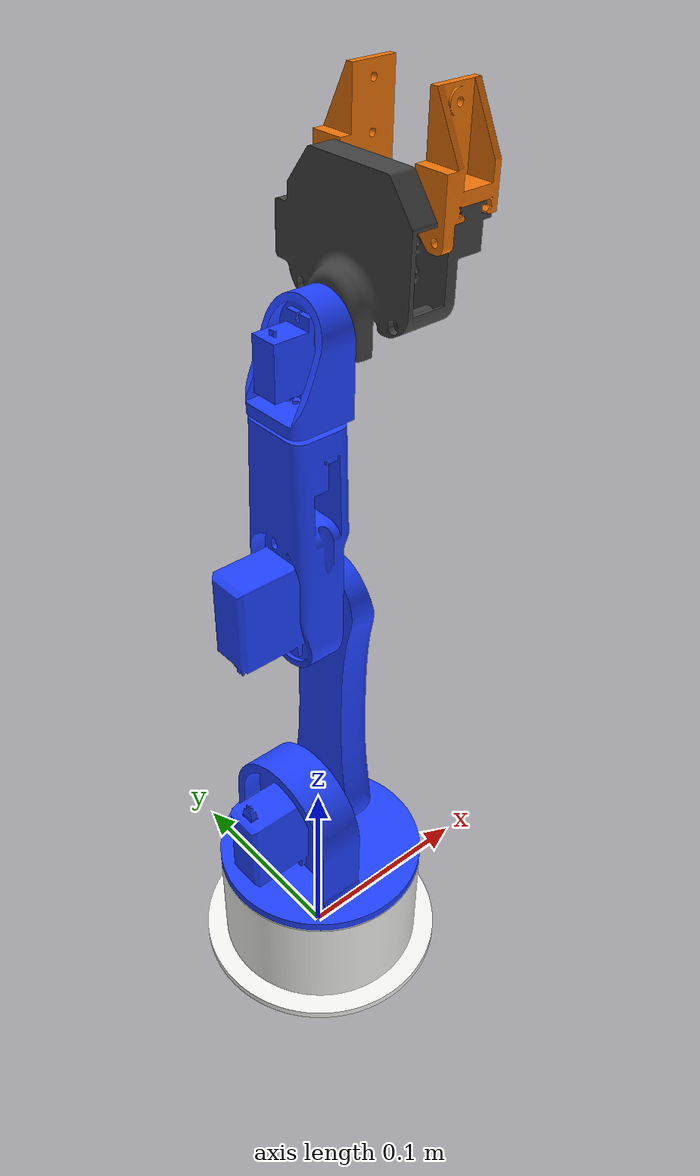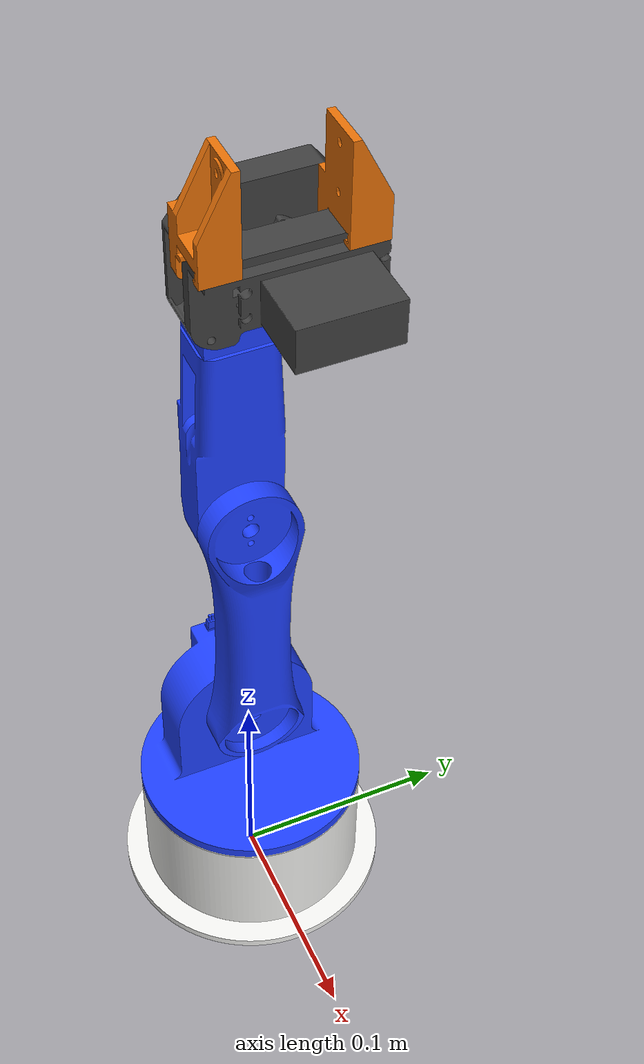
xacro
<?xml version="1.0" ?>
<robot name="arm" xmlns:xacro="http://www.ros.org/wiki/xacro">

<xacro:include filename="$(find arm_description)/urdf/materials.xacro" />
<xacro:include filename="$(find arm_description)/urdf/arm.trans" />
<xacro:include filename="$(find arm_description)/urdf/arm.gazebo" />
<xacro:arg name="transmission_hw_interface" default="hardware_interface/EffortJointInterface"/>

<link name="world">

   </link>

<joint name="world_to_base_link" type="fixed">
     <parent link="world"/>
     <child link="base_link"/>
</joint>

<link name="base_link">
  <inertial>
    <origin xyz="0.0014478516154129634 -0.00016509944390842335 0.0282881699125232" rpy="0 0 0"/>
    <mass value="0.24259873597275916"/>
    <inertia ixx="0.000296" iyy="0.000316" izz="0.000468" ixy="-0.0" iyz="-0.0" ixz="-2e-06"/>
  </inertial>
  <visual>
    <origin xyz="0 0 0" rpy="0 0 0"/>
    <geometry>
      <mesh filename="package://arm_description/meshes/base_link.stl" scale="0.001 0.001 0.001"/>
    </geometry>
    <material name="abs_white"/>
  </visual>
  <collision>
    <origin xyz="0 0 0" rpy="0 0 0"/>
    <geometry>
      <mesh filename="package://arm_description/meshes/base_link.stl" scale="0.001 0.001 0.001"/>
    </geometry>
  </collision>
</link>

<link name="waist_1">
  <inertial>
    <origin xyz="-0.01198652734822643 4.491314676782147e-05 0.025605754904451675" rpy="0 0 0"/>
    <mass value="0.16087051684688564"/>
    <inertia ixx="0.000137" iyy="0.000133" izz="0.000128" ixy="0.0" iyz="-0.0" ixz="2.2e-05"/>
  </inertial>
  <visual>
    <origin xyz="-0.001 0.0002 -0.06" rpy="0 0 0"/>
    <geometry>
      <mesh filename="package://arm_description/meshes/waist_1.stl" scale="0.001 0.001 0.001"/>
    </geometry>
    <material name="opaque3165255"/>
  </visual>
  <collision>
    <origin xyz="-0.001 0.0002 -0.06" rpy="0 0 0"/>
    <geometry>
      <mesh filename="package://arm_description/meshes/waist_1.stl" scale="0.001 0.001 0.001"/>
    </geometry>
  </collision>
</link>

<link name="arm_1_1">
  <inertial>
    <origin xyz="0.010989461894290975 3.1599869929879645e-08 0.05920516995044965" rpy="0 0 0"/>
    <mass value="0.0798611057778876"/>
    <inertia ixx="0.00014" iyy="0.000134" izz="1.1e-05" ixy="-0.0" iyz="0.0" ixz="0.0"/>
  </inertial>
  <visual>
    <origin xyz="0.0022 0.0002 -0.10675" rpy="0 0 0"/>
    <geometry>
      <mesh filename="package://arm_description/meshes/arm_1_1.stl" scale="0.001 0.001 0.001"/>
    </geometry>
    <material name="opaque3165255"/>
  </visual>
  <collision>
    <origin xyz="0.0022 0.0002 -0.10675" rpy="0 0 0"/>
    <geometry>
      <mesh filename="package://arm_description/meshes/arm_1_1.stl" scale="0.001 0.001 0.001"/>
    </geometry>
  </collision>
</link>

<link name="arm_2_1">
  <inertial>
    <origin xyz="-0.01708633756900814 0.00010789974053302186 0.031054706394680942" rpy="0 0 0"/>
    <mass value="0.11409253695444263"/>
    <inertia ixx="0.000121" iyy="0.000129" izz="2.8e-05" ixy="0.0" iyz="-0.0" ixz="-1.5e-05"/>
  </inertial>
  <visual>
    <origin xyz="-0.001 0.0002 -0.22675" rpy="0 0 0"/>
    <geometry>
      <mesh filename="package://arm_description/meshes/arm_2_1.stl" scale="0.001 0.001 0.001"/>
    </geometry>
    <material name="opaque3165255"/>
  </visual>
  <collision>
    <origin xyz="-0.001 0.0002 -0.22675" rpy="0 0 0"/>
    <geometry>
      <mesh filename="package://arm_description/meshes/arm_2_1.stl" scale="0.001 0.001 0.001"/>
    </geometry>
  </collision>
</link>

<link name="arm_3_1">
  <inertial>
    <origin xyz="0.0030611438970693447 -0.005031856891009146 0.021377337389699103" rpy="0 0 0"/>
    <mass value="0.02953622640200806"/>
    <inertia ixx="7e-06" iyy="6e-06" izz="4e-06" ixy="-0.0" iyz="-0.0" ixz="-1e-06"/>
  </inertial>
  <visual>
    <origin xyz="0.0097 -0.0051 -0.3165" rpy="0 0 0"/>
    <geometry>
      <mesh filename="package://arm_description/meshes/arm_3_1.stl" scale="0.001 0.001 0.001"/>
    </geometry>
    <material name="opaque3165255"/>
  </visual>
  <collision>
    <origin xyz="0.0097 -0.0051 -0.3165" rpy="0 0 0"/>
    <geometry>
      <mesh filename="package://arm_description/meshes/arm_3_1.stl" scale="0.001 0.001 0.001"/>
    </geometry>
  </collision>
</link>

<link name="grip_finger_left_2">
  <inertial>
    <origin xyz="-0.014699973902568358 -0.008314396235535967 0.008945627102874887" rpy="0 0 0"/>
    <mass value="0.010284278893188307"/>
    <inertia ixx="3e-06" iyy="3e-06" izz="1e-06" ixy="0.0" iyz="0.0" ixz="-1e-06"/>
  </inertial>
  <visual>
    <origin xyz="-0.05095 -0.0326 -0.388581" rpy="0 0 0"/>
    <geometry>
      <mesh filename="package://arm_description/meshes/grip_finger_left_2.stl" scale="0.001 0.001 0.001"/>
    </geometry>
    <material name="opaque2321138"/>
  </visual>
  <collision>
    <origin xyz="-0.05095 -0.0326 -0.388581" rpy="0 0 0"/>
    <geometry>
      <mesh filename="package://arm_description/meshes/grip_finger_left_2.stl" scale="0.001 0.001 0.001"/>
    </geometry>
  </collision>
</link>

<link name="grip_finger_right_2">
  <inertial>
    <origin xyz="-0.013200410179237919 0.0068658167587088426 0.013584088687019158" rpy="0 0 0"/>
    <mass value="0.008721413951588741"/>
    <inertia ixx="1e-06" iyy="2e-06" izz="1e-06" ixy="-0.0" iyz="-0.0" ixz="-0.0"/>
  </inertial>
  <visual>
    <origin xyz="-0.05095 0.0324 -0.388581" rpy="0 0 0"/>
    <geometry>
      <mesh filename="package://arm_description/meshes/grip_finger_right_2.stl" scale="0.001 0.001 0.001"/>
    </geometry>
    <material name="opaque2321138"/>
  </visual>
  <collision>
    <origin xyz="-0.05095 0.0324 -0.388581" rpy="0 0 0"/>
    <geometry>
      <mesh filename="package://arm_description/meshes/grip_finger_right_2.stl" scale="0.001 0.001 0.001"/>
    </geometry>
  </collision>
</link>

<link name="flange_adaptor_2">
  <inertial>
    <origin xyz="0.03242869105809191 0.004428495488679417 0.025804902005189756" rpy="0 0 0"/>
    <mass value="0.07479986297837186"/>
    <inertia ixx="3.2e-05" iyy="3.5e-05" izz="4.4e-05" ixy="-5e-06" iyz="0.0" ixz="-3e-06"/>
  </inertial>
  <visual>
    <origin xyz="-0.00565 -0.0001 -0.34645" rpy="0 0 0"/>
    <geometry>
      <mesh filename="package://arm_description/meshes/flange_adaptor_2.stl" scale="0.001 0.001 0.001"/>
    </geometry>
    <material name="opaque646464"/>
  </visual>
  <collision>
    <origin xyz="-0.00565 -0.0001 -0.34645" rpy="0 0 0"/>
    <geometry>
      <mesh filename="package://arm_description/meshes/flange_adaptor_2.stl" scale="0.001 0.001 0.001"/>
    </geometry>
  </collision>
</link>

<joint name="rev_base" type="continuous">
  <origin xyz="0.001 -0.0002 0.06" rpy="0 0 0"/>
  <parent link="base_link"/>
  <child link="waist_1"/>
  <axis xyz="0.0 0.0 1.0"/>
  <dynamics friction="100" damping="10.0"/>
</joint>

<joint name="rev_waist" type="continuous">
  <origin xyz="-0.0032 0.0 0.04675" rpy="0 0 0"/>
  <parent link="waist_1"/>
  <child link="arm_1_1"/>
  <axis xyz="-1.0 -0.0 0.0"/>
</joint>

<joint name="rev_elbow" type="continuous">
  <origin xyz="0.0032 0.0 0.12" rpy="0 0 0"/>
  <parent link="arm_1_1"/>
  <child link="arm_2_1"/>
  <axis xyz="-1.0 -0.0 0.0"/>
</joint>

<joint name="rev_wrist_arm" type="continuous">
  <origin xyz="-0.0107 0.0053 0.08975" rpy="0 0 0"/>
  <parent link="arm_2_1"/>
  <child link="arm_3_1"/>
  <axis xyz="0.0 0.0 1.0"/>
</joint>

<joint name="lfinger_slider" type="prismatic">
  <origin xyz="0.0453 0.0325 0.042131" rpy="0 0 0"/>
  <parent link="flange_adaptor_2"/>
  <child link="grip_finger_left_2"/>
  <axis xyz="0.0 -1.0 -0.0"/>
  <limit upper="0.0175" lower="0.0" effort="100" velocity="100"/>
</joint>

<joint name="rfinger_slider" type="prismatic">
  <origin xyz="0.0453 -0.0325 0.042131" rpy="0 0 0"/>
  <parent link="flange_adaptor_2"/>
  <child link="grip_finger_right_2"/>
  <axis xyz="-0.0 1.0 0.0"/>
  <limit upper="0.0175" lower="0.0" effort="100" velocity="100"/>
</joint>

<joint name="rev_effector" type="continuous">
  <origin xyz="0.01535 -0.005 0.02995" rpy="0 0 0"/>
  <parent link="arm_3_1"/>
  <child link="flange_adaptor_2"/>
  <axis xyz="1.0 0.0 -0.0"/>
</joint>

</robot>

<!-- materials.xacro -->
<robot name="arm" xmlns:xacro="http://www.ros.org/wiki/xacro" >

<material name="silver_default">
  <color rgba="0.700 0.700 0.700 1.000"/>
</material>
<material name="abs_white">
  <color rgba="0.9647058823529412 0.9647058823529412 0.9529411764705882 1.0"/>
</material>
<material name="opaque3165255">
  <color rgba="0.12156862745098039 0.2549019607843137 1.0 1.0"/>
</material>
<material name="opaque646464">
  <color rgba="0.25098039215686274 0.25098039215686274 0.25098039215686274 1.0"/>
</material>
<material name="opaque2321138">
  <color rgba="0.9098039215686274 0.44313725490196076 0.03137254901960784 1.0"/>
</material>

</robot>

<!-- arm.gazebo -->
<robot name="arm" xmlns:xacro="http://www.ros.org/wiki/xacro" >

<xacro:property name="body_color" value="Gazebo/Silver" />

<gazebo>
  <plugin name="control" filename="libgazebo_ros_control.so"/>
</gazebo>

<gazebo>
   <plugin name="gazebo_grasp_fix" filename="libgazebo_grasp_fix.so">
        <arm>
           <arm_name>arm</arm_name>
           <palm_link> flange_adaptor_2 </palm_link>
           <gripper_link> grip_finger_right_2 </gripper_link>
           <gripper_link> grip_finger_left_2 </gripper_link>

        </arm>
       <forces_angle_tolerance>100</forces_angle_tolerance>
       <update_rate>4</update_rate>
       <grip_count_threshold>4</grip_count_threshold>
       <max_grip_count>8</max_grip_count>
       <release_tolerance>0.005</release_tolerance>
       <disable_collisions_on_attach>false</disable_collisions_on_attach>
       <contact_topic>__default_topic__</contact_topic>
    </plugin>
</gazebo>

<gazebo reference="base_link">
  <material>${body_color}</material>
  <mu1>0.2</mu1>
  <mu2>0.2</mu2>
  <selfCollide>true</selfCollide>
  <gravity>true</gravity>
</gazebo>

<gazebo reference="waist_1">
  <material>${body_color}</material>
  <mu1>0.2</mu1>
  <mu2>0.2</mu2>
  <selfCollide>true</selfCollide>
</gazebo>

<gazebo reference="arm_1_1">
  <material>${body_color}</material>
  <mu1>0.2</mu1>
  <mu2>0.2</mu2>
  <selfCollide>true</selfCollide>
</gazebo>

<gazebo reference="arm_2_1">
  <material>${body_color}</material>
  <mu1>0.2</mu1>
  <mu2>0.2</mu2>
  <selfCollide>true</selfCollide>
</gazebo>

<gazebo reference="arm_3_1">
  <material>${body_color}</material>
  <mu1>0.2</mu1>
  <mu2>0.2</mu2>
  <selfCollide>true</selfCollide>
</gazebo>

<gazebo reference="grip_finger_left_2">
  <material>${body_color}</material>
  <mu1>0.2</mu1>
  <mu2>0.2</mu2>
  <selfCollide>true</selfCollide>
</gazebo>

<gazebo reference="grip_finger_right_2">
  <material>${body_color}</material>
  <mu1>1</mu1>
  <mu2>1</mu2>
  <selfCollide>true</selfCollide>
</gazebo>

<gazebo reference="flange_adaptor_2">
  <material>${body_color}</material>
  <mu1>1</mu1>
  <mu2>1</mu2>
  <selfCollide>true</selfCollide>
</gazebo>

</robot>
